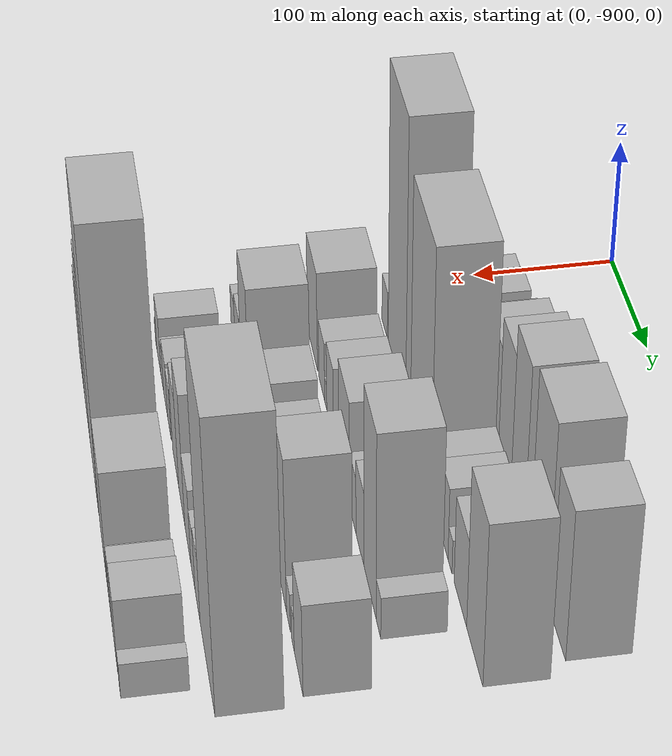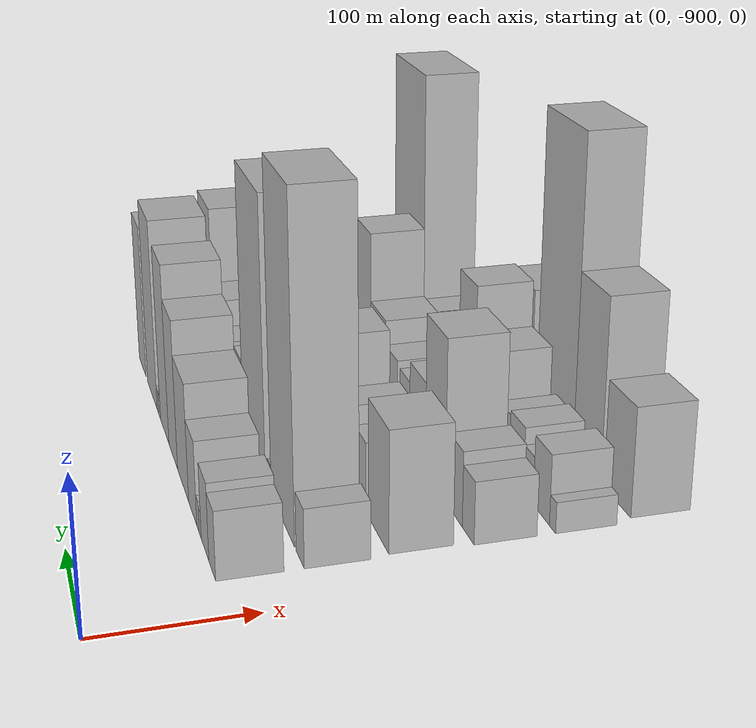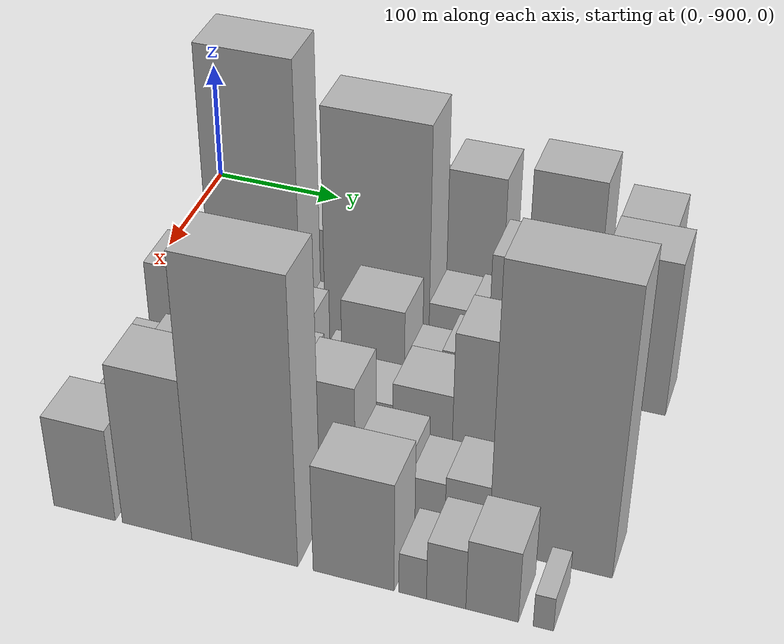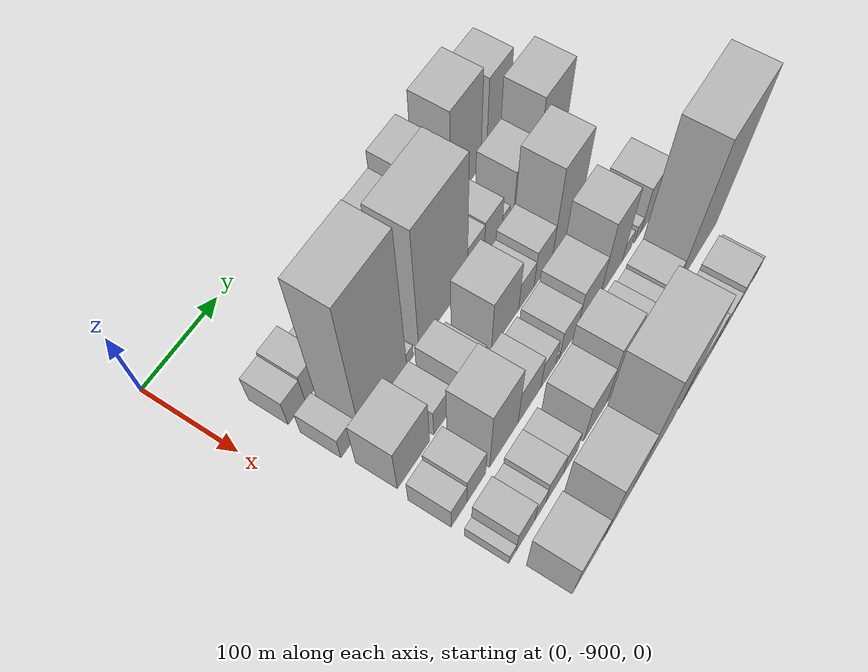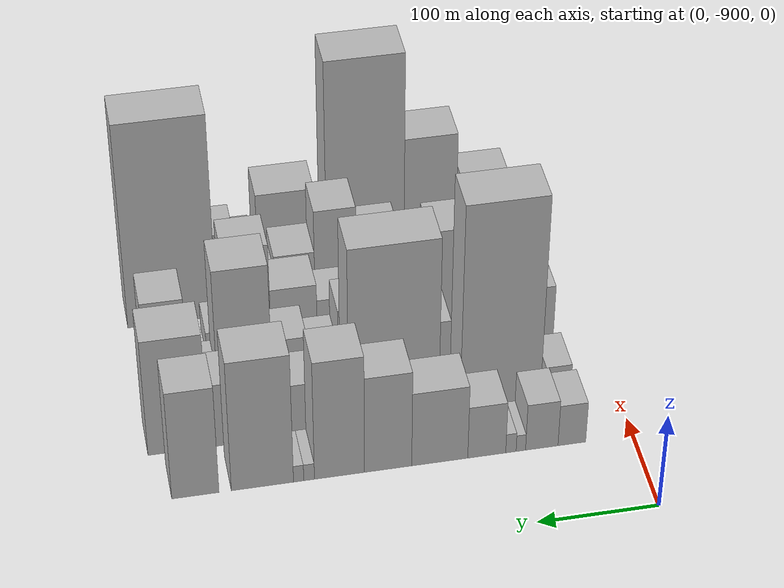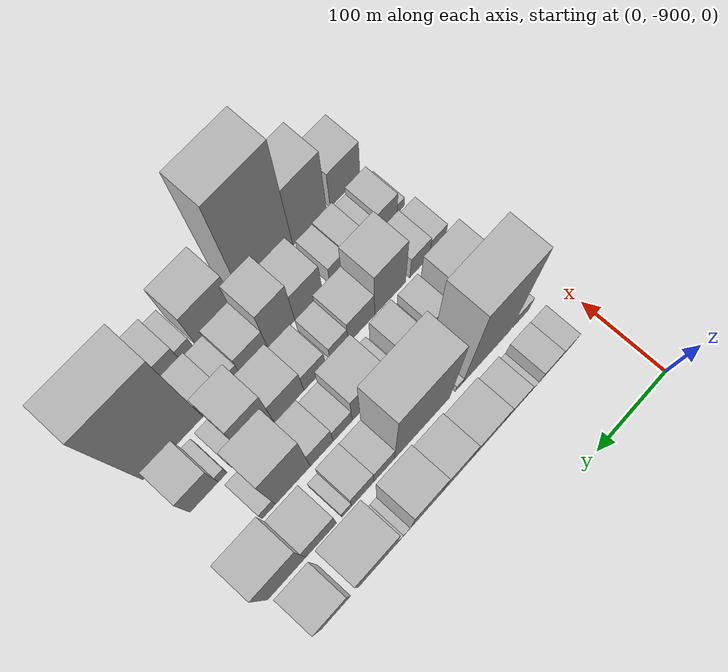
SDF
<sdf version="1.6">
 <world name="default">
  <model name="building_1">
   <static>1</static>
   <pose>100.0000 -848.3081 0 0.000000 0.000000 0.000000</pose>
   <link name="link">
    <pose>0 0 22.50 0 0 0</pose>
    <collision name="collision"><geometry><box><size>40.0000 23.3837 45.0000</size></box></geometry></collision>
    <visual name="visual">
     <cast_shadows>0</cast_shadows>
     <geometry><box><size>40.0000 23.3837 45.0000</size></box></geometry>
     <material>
      <script>
       <uri>model://HANNAS_wall/materials/scripts</uri>
       <uri>model://HANNAS_wall/materials/textures</uri>
       <name>vrc/HANNAS_wall</name>
      </script>
     </material>
    </visual>
   </link>
  </model>
  <model name="building_2">
   <static>1</static>
   <pose>100.0000 -822.9420 0 0.000000 0.000000 0.000000</pose>
   <link name="link">
    <pose>0 0 25.50 0 0 0</pose>
    <collision name="collision"><geometry><box><size>40.0000 27.3487 51.0000</size></box></geometry></collision>
    <visual name="visual">
     <cast_shadows>0</cast_shadows>
     <geometry><box><size>40.0000 27.3487 51.0000</size></box></geometry>
     <material>
      <script>
       <uri>model://HANNAS_wall/materials/scripts</uri>
       <uri>model://HANNAS_wall/materials/textures</uri>
       <name>vrc/HANNAS_wall</name>
      </script>
     </material>
    </visual>
   </link>
  </model>
  <model name="building_3">
   <static>1</static>
   <pose>100.0000 -805.3015 0 0.000000 0.000000 0.000000</pose>
   <link name="link">
    <pose>0 0 9.00 0 0 0</pose>
    <collision name="collision"><geometry><box><size>40.0000 7.9323 18.0000</size></box></geometry></collision>
    <visual name="visual">
     <cast_shadows>0</cast_shadows>
     <geometry><box><size>40.0000 7.9323 18.0000</size></box></geometry>
     <material>
      <script>
       <uri>model://HANNAS_wall/materials/scripts</uri>
       <uri>model://HANNAS_wall/materials/textures</uri>
       <name>vrc/HANNAS_wall</name>
      </script>
     </material>
    </visual>
   </link>
  </model>
  <model name="building_4">
   <static>1</static>
   <pose>100.0000 -796.9766 0 0.000000 0.000000 0.000000</pose>
   <link name="link">
    <pose>0 0 10.50 0 0 0</pose>
    <collision name="collision"><geometry><box><size>40.0000 8.7175 21.0000</size></box></geometry></collision>
    <visual name="visual">
     <cast_shadows>0</cast_shadows>
     <geometry><box><size>40.0000 8.7175 21.0000</size></box></geometry>
     <material>
      <script>
       <uri>model://HANNAS_wall/materials/scripts</uri>
       <uri>model://HANNAS_wall/materials/textures</uri>
       <name>vrc/HANNAS_wall</name>
      </script>
     </material>
    </visual>
   </link>
  </model>
  <model name="building_5">
   <static>1</static>
   <pose>100.0000 -776.7203 0 0.000000 0.000000 0.000000</pose>
   <link name="link">
    <pose>0 0 28.50 0 0 0</pose>
    <collision name="collision"><geometry><box><size>40.0000 31.7950 57.0000</size></box></geometry></collision>
    <visual name="visual">
     <cast_shadows>0</cast_shadows>
     <geometry><box><size>40.0000 31.7950 57.0000</size></box></geometry>
     <material>
      <script>
       <uri>model://HANNAS_wall/materials/scripts</uri>
       <uri>model://HANNAS_wall/materials/textures</uri>
       <name>vrc/HANNAS_wall</name>
      </script>
     </material>
    </visual>
   </link>
  </model>
  <model name="building_6">
   <static>1</static>
   <pose>100.0000 -737.4847 0 0.000000 0.000000 0.000000</pose>
   <link name="link">
    <pose>0 0 40.50 0 0 0</pose>
    <collision name="collision"><geometry><box><size>40.0000 46.6762 81.0000</size></box></geometry></collision>
    <visual name="visual">
     <cast_shadows>0</cast_shadows>
     <geometry><box><size>40.0000 46.6762 81.0000</size></box></geometry>
     <material>
      <script>
       <uri>model://HANNAS_wall/materials/scripts</uri>
       <uri>model://HANNAS_wall/materials/textures</uri>
       <name>vrc/HANNAS_wall</name>
      </script>
     </material>
    </visual>
   </link>
  </model>
  <model name="building_7">
   <static>1</static>
   <pose>100.0000 -694.6013 0 0.000000 0.000000 0.000000</pose>
   <link name="link">
    <pose>0 0 52.50 0 0 0</pose>
    <collision name="collision"><geometry><box><size>40.0000 39.0908 105.0000</size></box></geometry></collision>
    <visual name="visual">
     <cast_shadows>0</cast_shadows>
     <geometry><box><size>40.0000 39.0908 105.0000</size></box></geometry>
     <material>
      <script>
       <uri>model://HANNAS_wall/materials/scripts</uri>
       <uri>model://HANNAS_wall/materials/textures</uri>
       <name>vrc/HANNAS_wall</name>
      </script>
     </material>
    </visual>
   </link>
  </model>
  <model name="building_8">
   <static>1</static>
   <pose>100.0000 -654.4463 0 0.000000 0.000000 0.000000</pose>
   <link name="link">
    <pose>0 0 64.50 0 0 0</pose>
    <collision name="collision"><geometry><box><size>40.0000 41.2190 129.0000</size></box></geometry></collision>
    <visual name="visual">
     <cast_shadows>0</cast_shadows>
     <geometry><box><size>40.0000 41.2190 129.0000</size></box></geometry>
     <material>
      <script>
       <uri>model://HANNAS_wall/materials/scripts</uri>
       <uri>model://HANNAS_wall/materials/textures</uri>
       <name>vrc/HANNAS_wall</name>
      </script>
     </material>
    </visual>
   </link>
  </model>
  <model name="building_9">
   <static>1</static>
   <pose>100.0000 -629.4320 0 0.000000 0.000000 0.000000</pose>
   <link name="link">
    <pose>0 0 9.00 0 0 0</pose>
    <collision name="collision"><geometry><box><size>40.0000 8.8096 18.0000</size></box></geometry></collision>
    <visual name="visual">
     <cast_shadows>0</cast_shadows>
     <geometry><box><size>40.0000 8.8096 18.0000</size></box></geometry>
     <material>
      <script>
       <uri>model://HANNAS_wall/materials/scripts</uri>
       <uri>model://HANNAS_wall/materials/textures</uri>
       <name>vrc/HANNAS_wall</name>
      </script>
     </material>
    </visual>
   </link>
  </model>
  <model name="building_10">
   <static>1</static>
   <pose>100.0000 -620.8518 0 0.000000 0.000000 0.000000</pose>
   <link name="link">
    <pose>0 0 9.00 0 0 0</pose>
    <collision name="collision"><geometry><box><size>40.0000 8.3508 18.0000</size></box></geometry></collision>
    <visual name="visual">
     <cast_shadows>0</cast_shadows>
     <geometry><box><size>40.0000 8.3508 18.0000</size></box></geometry>
     <material>
      <script>
       <uri>model://HANNAS_wall/materials/scripts</uri>
       <uri>model://HANNAS_wall/materials/textures</uri>
       <name>vrc/HANNAS_wall</name>
      </script>
     </material>
    </visual>
   </link>
  </model>
  <model name="building_11">
   <static>1</static>
   <pose>100.0000 -591.3180 0 0.000000 0.000000 0.000000</pose>
   <link name="link">
    <pose>0 0 70.50 0 0 0</pose>
    <collision name="collision"><geometry><box><size>40.0000 50.7169 141.0000</size></box></geometry></collision>
    <visual name="visual">
     <cast_shadows>0</cast_shadows>
     <geometry><box><size>40.0000 50.7169 141.0000</size></box></geometry>
     <material>
      <script>
       <uri>model://HANNAS_wall/materials/scripts</uri>
       <uri>model://HANNAS_wall/materials/textures</uri>
       <name>vrc/HANNAS_wall</name>
      </script>
     </material>
    </visual>
   </link>
  </model>
  <model name="building_12">
   <static>1</static>
   <pose>100.0000 -536.8043 0 0.000000 0.000000 0.000000</pose>
   <link name="link">
    <pose>0 0 58.50 0 0 0</pose>
    <collision name="collision"><geometry><box><size>40.0000 38.3103 117.0000</size></box></geometry></collision>
    <visual name="visual">
     <cast_shadows>0</cast_shadows>
     <geometry><box><size>40.0000 38.3103 117.0000</size></box></geometry>
     <material>
      <script>
       <uri>model://HANNAS_wall/materials/scripts</uri>
       <uri>model://HANNAS_wall/materials/textures</uri>
       <name>vrc/HANNAS_wall</name>
      </script>
     </material>
    </visual>
   </link>
  </model>
  <model name="building_52">
   <static>1</static>
   <pose>152.0000 -848.9873 0 0.000000 0.000000 0.000000</pose>
   <link name="link">
    <pose>0 0 19.50 0 0 0</pose>
    <collision name="collision"><geometry><box><size>40.0000 22.0254 39.0000</size></box></geometry></collision>
    <visual name="visual">
     <cast_shadows>0</cast_shadows>
     <geometry><box><size>40.0000 22.0254 39.0000</size></box></geometry>
     <material>
      <script>
       <uri>model://HANNAS_wall/materials/scripts</uri>
       <uri>model://HANNAS_wall/materials/textures</uri>
       <name>vrc/HANNAS_wall</name>
      </script>
     </material>
    </visual>
   </link>
  </model>
  <model name="building_53">
   <static>1</static>
   <pose>152.0000 -799.7490 0 0.000000 0.000000 0.000000</pose>
   <link name="link">
    <pose>0 0 112.50 0 0 0</pose>
    <collision name="collision"><geometry><box><size>40.0000 68.4512 225.0000</size></box></geometry></collision>
    <visual name="visual">
     <cast_shadows>0</cast_shadows>
     <geometry><box><size>40.0000 68.4512 225.0000</size></box></geometry>
     <material>
      <script>
       <uri>model://HANNAS_wall/materials/scripts</uri>
       <uri>model://HANNAS_wall/materials/textures</uri>
       <name>vrc/HANNAS_wall</name>
      </script>
     </material>
    </visual>
   </link>
  </model>
  <model name="building_54">
   <static>1</static>
   <pose>152.0000 -760.4466 0 0.000000 0.000000 0.000000</pose>
   <link name="link">
    <pose>0 0 10.50 0 0 0</pose>
    <collision name="collision"><geometry><box><size>40.0000 10.1536 21.0000</size></box></geometry></collision>
    <visual name="visual">
     <cast_shadows>0</cast_shadows>
     <geometry><box><size>40.0000 10.1536 21.0000</size></box></geometry>
     <material>
      <script>
       <uri>model://HANNAS_wall/materials/scripts</uri>
       <uri>model://HANNAS_wall/materials/textures</uri>
       <name>vrc/HANNAS_wall</name>
      </script>
     </material>
    </visual>
   </link>
  </model>
  <model name="building_55">
   <static>1</static>
   <pose>152.0000 -709.3927 0 0.000000 0.000000 0.000000</pose>
   <link name="link">
    <pose>0 0 97.50 0 0 0</pose>
    <collision name="collision"><geometry><box><size>40.0000 75.9543 195.0000</size></box></geometry></collision>
    <visual name="visual">
     <cast_shadows>0</cast_shadows>
     <geometry><box><size>40.0000 75.9543 195.0000</size></box></geometry>
     <material>
      <script>
       <uri>model://HANNAS_wall/materials/scripts</uri>
       <uri>model://HANNAS_wall/materials/textures</uri>
       <name>vrc/HANNAS_wall</name>
      </script>
     </material>
    </visual>
   </link>
  </model>
  <model name="building_56">
   <static>1</static>
   <pose>152.0000 -657.5822 0 0.000000 0.000000 0.000000</pose>
   <link name="link">
    <pose>0 0 27.00 0 0 0</pose>
    <collision name="collision"><geometry><box><size>40.0000 27.6666 54.0000</size></box></geometry></collision>
    <visual name="visual">
     <cast_shadows>0</cast_shadows>
     <geometry><box><size>40.0000 27.6666 54.0000</size></box></geometry>
     <material>
      <script>
       <uri>model://HANNAS_wall/materials/scripts</uri>
       <uri>model://HANNAS_wall/materials/textures</uri>
       <name>vrc/HANNAS_wall</name>
      </script>
     </material>
    </visual>
   </link>
  </model>
  <model name="building_57">
   <static>1</static>
   <pose>152.0000 -629.0129 0 0.000000 0.000000 0.000000</pose>
   <link name="link">
    <pose>0 0 28.50 0 0 0</pose>
    <collision name="collision"><geometry><box><size>40.0000 29.4720 57.0000</size></box></geometry></collision>
    <visual name="visual">
     <cast_shadows>0</cast_shadows>
     <geometry><box><size>40.0000 29.4720 57.0000</size></box></geometry>
     <material>
      <script>
       <uri>model://HANNAS_wall/materials/scripts</uri>
       <uri>model://HANNAS_wall/materials/textures</uri>
       <name>vrc/HANNAS_wall</name>
      </script>
     </material>
    </visual>
   </link>
  </model>
  <model name="building_58">
   <static>1</static>
   <pose>152.0000 -607.7544 0 0.000000 0.000000 0.000000</pose>
   <link name="link">
    <pose>0 0 13.50 0 0 0</pose>
    <collision name="collision"><geometry><box><size>40.0000 13.0451 27.0000</size></box></geometry></collision>
    <visual name="visual">
     <cast_shadows>0</cast_shadows>
     <geometry><box><size>40.0000 13.0451 27.0000</size></box></geometry>
     <material>
      <script>
       <uri>model://HANNAS_wall/materials/scripts</uri>
       <uri>model://HANNAS_wall/materials/textures</uri>
       <name>vrc/HANNAS_wall</name>
      </script>
     </material>
    </visual>
   </link>
  </model>
  <model name="building_59">
   <static>1</static>
   <pose>152.0000 -574.2278 0 0.000000 0.000000 0.000000</pose>
   <link name="link">
    <pose>0 0 34.50 0 0 0</pose>
    <collision name="collision"><geometry><box><size>40.0000 40.0081 69.0000</size></box></geometry></collision>
    <visual name="visual">
     <cast_shadows>0</cast_shadows>
     <geometry><box><size>40.0000 40.0081 69.0000</size></box></geometry>
     <material>
      <script>
       <uri>model://HANNAS_wall/materials/scripts</uri>
       <uri>model://HANNAS_wall/materials/textures</uri>
       <name>vrc/HANNAS_wall</name>
      </script>
     </material>
    </visual>
   </link>
  </model>
  <model name="building_60">
   <static>1</static>
   <pose>152.0000 -529.4644 0 0.000000 0.000000 0.000000</pose>
   <link name="link">
    <pose>0 0 63.00 0 0 0</pose>
    <collision name="collision"><geometry><box><size>40.0000 49.5187 126.0000</size></box></geometry></collision>
    <visual name="visual">
     <cast_shadows>0</cast_shadows>
     <geometry><box><size>40.0000 49.5187 126.0000</size></box></geometry>
     <material>
      <script>
       <uri>model://HANNAS_wall/materials/scripts</uri>
       <uri>model://HANNAS_wall/materials/textures</uri>
       <name>vrc/HANNAS_wall</name>
      </script>
     </material>
    </visual>
   </link>
  </model>
  <model name="building_96">
   <static>1</static>
   <pose>204.0000 -833.6947 0 0.000000 0.000000 0.000000</pose>
   <link name="link">
    <pose>0 0 40.50 0 0 0</pose>
    <collision name="collision"><geometry><box><size>40.0000 46.6106 81.0000</size></box></geometry></collision>
    <visual name="visual">
     <cast_shadows>0</cast_shadows>
     <geometry><box><size>40.0000 46.6106 81.0000</size></box></geometry>
     <material>
      <script>
       <uri>model://HANNAS_wall/materials/scripts</uri>
       <uri>model://HANNAS_wall/materials/textures</uri>
       <name>vrc/HANNAS_wall</name>
      </script>
     </material>
    </visual>
   </link>
  </model>
  <model name="building_97">
   <static>1</static>
   <pose>204.0000 -791.0180 0 0.000000 0.000000 0.000000</pose>
   <link name="link">
    <pose>0 0 24.00 0 0 0</pose>
    <collision name="collision"><geometry><box><size>40.0000 26.7429 48.0000</size></box></geometry></collision>
    <visual name="visual">
     <cast_shadows>0</cast_shadows>
     <geometry><box><size>40.0000 26.7429 48.0000</size></box></geometry>
     <material>
      <script>
       <uri>model://HANNAS_wall/materials/scripts</uri>
       <uri>model://HANNAS_wall/materials/textures</uri>
       <name>vrc/HANNAS_wall</name>
      </script>
     </material>
    </visual>
   </link>
  </model>
  <model name="building_98">
   <static>1</static>
   <pose>204.0000 -773.0447 0 0.000000 0.000000 0.000000</pose>
   <link name="link">
    <pose>0 0 10.50 0 0 0</pose>
    <collision name="collision"><geometry><box><size>40.0000 9.2038 21.0000</size></box></geometry></collision>
    <visual name="visual">
     <cast_shadows>0</cast_shadows>
     <geometry><box><size>40.0000 9.2038 21.0000</size></box></geometry>
     <material>
      <script>
       <uri>model://HANNAS_wall/materials/scripts</uri>
       <uri>model://HANNAS_wall/materials/textures</uri>
       <name>vrc/HANNAS_wall</name>
      </script>
     </material>
    </visual>
   </link>
  </model>
  <model name="building_99">
   <static>1</static>
   <pose>204.0000 -754.0227 0 0.000000 0.000000 0.000000</pose>
   <link name="link">
    <pose>0 0 28.50 0 0 0</pose>
    <collision name="collision"><geometry><box><size>40.0000 28.8403 57.0000</size></box></geometry></collision>
    <visual name="visual">
     <cast_shadows>0</cast_shadows>
     <geometry><box><size>40.0000 28.8403 57.0000</size></box></geometry>
     <material>
      <script>
       <uri>model://HANNAS_wall/materials/scripts</uri>
       <uri>model://HANNAS_wall/materials/textures</uri>
       <name>vrc/HANNAS_wall</name>
      </script>
     </material>
    </visual>
   </link>
  </model>
  <model name="building_100">
   <static>1</static>
   <pose>204.0000 -729.3753 0 0.000000 0.000000 0.000000</pose>
   <link name="link">
    <pose>0 0 12.00 0 0 0</pose>
    <collision name="collision"><geometry><box><size>40.0000 10.4544 24.0000</size></box></geometry></collision>
    <visual name="visual">
     <cast_shadows>0</cast_shadows>
     <geometry><box><size>40.0000 10.4544 24.0000</size></box></geometry>
     <material>
      <script>
       <uri>model://HANNAS_wall/materials/scripts</uri>
       <uri>model://HANNAS_wall/materials/textures</uri>
       <name>vrc/HANNAS_wall</name>
      </script>
     </material>
    </visual>
   </link>
  </model>
  <model name="building_101">
   <static>1</static>
   <pose>204.0000 -694.1203 0 0.000000 0.000000 0.000000</pose>
   <link name="link">
    <pose>0 0 42.00 0 0 0</pose>
    <collision name="collision"><geometry><box><size>40.0000 44.0556 84.0000</size></box></geometry></collision>
    <visual name="visual">
     <cast_shadows>0</cast_shadows>
     <geometry><box><size>40.0000 44.0556 84.0000</size></box></geometry>
     <material>
      <script>
       <uri>model://HANNAS_wall/materials/scripts</uri>
       <uri>model://HANNAS_wall/materials/textures</uri>
       <name>vrc/HANNAS_wall</name>
      </script>
     </material>
    </visual>
   </link>
  </model>
  <model name="building_102">
   <static>1</static>
   <pose>204.0000 -659.2146 0 0.000000 0.000000 0.000000</pose>
   <link name="link">
    <pose>0 0 22.50 0 0 0</pose>
    <collision name="collision"><geometry><box><size>40.0000 25.7557 45.0000</size></box></geometry></collision>
    <visual name="visual">
     <cast_shadows>0</cast_shadows>
     <geometry><box><size>40.0000 25.7557 45.0000</size></box></geometry>
     <material>
      <script>
       <uri>model://HANNAS_wall/materials/scripts</uri>
       <uri>model://HANNAS_wall/materials/textures</uri>
       <name>vrc/HANNAS_wall</name>
      </script>
     </material>
    </visual>
   </link>
  </model>
  <model name="building_103">
   <static>1</static>
   <pose>204.0000 -631.1133 0 0.000000 0.000000 0.000000</pose>
   <link name="link">
    <pose>0 0 30.00 0 0 0</pose>
    <collision name="collision"><geometry><box><size>40.0000 30.4469 60.0000</size></box></geometry></collision>
    <visual name="visual">
     <cast_shadows>0</cast_shadows>
     <geometry><box><size>40.0000 30.4469 60.0000</size></box></geometry>
     <material>
      <script>
       <uri>model://HANNAS_wall/materials/scripts</uri>
       <uri>model://HANNAS_wall/materials/textures</uri>
       <name>vrc/HANNAS_wall</name>
      </script>
     </material>
    </visual>
   </link>
  </model>
  <model name="building_104">
   <static>1</static>
   <pose>204.0000 -592.8675 0 0.000000 0.000000 0.000000</pose>
   <link name="link">
    <pose>0 0 72.00 0 0 0</pose>
    <collision name="collision"><geometry><box><size>40.0000 46.0448 144.0000</size></box></geometry></collision>
    <visual name="visual">
     <cast_shadows>0</cast_shadows>
     <geometry><box><size>40.0000 46.0448 144.0000</size></box></geometry>
     <material>
      <script>
       <uri>model://HANNAS_wall/materials/scripts</uri>
       <uri>model://HANNAS_wall/materials/textures</uri>
       <name>vrc/HANNAS_wall</name>
      </script>
     </material>
    </visual>
   </link>
  </model>
  <model name="building_105">
   <static>1</static>
   <pose>204.0000 -561.3258 0 0.000000 0.000000 0.000000</pose>
   <link name="link">
    <pose>0 0 16.50 0 0 0</pose>
    <collision name="collision"><geometry><box><size>40.0000 17.0385 33.0000</size></box></geometry></collision>
    <visual name="visual">
     <cast_shadows>0</cast_shadows>
     <geometry><box><size>40.0000 17.0385 33.0000</size></box></geometry>
     <material>
      <script>
       <uri>model://HANNAS_wall/materials/scripts</uri>
       <uri>model://HANNAS_wall/materials/textures</uri>
       <name>vrc/HANNAS_wall</name>
      </script>
     </material>
    </visual>
   </link>
  </model>
  <model name="building_150">
   <static>1</static>
   <pose>256.0000 -848.6496 0 0.000000 0.000000 0.000000</pose>
   <link name="link">
    <pose>0 0 21.00 0 0 0</pose>
    <collision name="collision"><geometry><box><size>40.0000 22.7009 42.0000</size></box></geometry></collision>
    <visual name="visual">
     <cast_shadows>0</cast_shadows>
     <geometry><box><size>40.0000 22.7009 42.0000</size></box></geometry>
     <material>
      <script>
       <uri>model://HANNAS_wall/materials/scripts</uri>
       <uri>model://HANNAS_wall/materials/textures</uri>
       <name>vrc/HANNAS_wall</name>
      </script>
     </material>
    </visual>
   </link>
  </model>
  <model name="building_151">
   <static>1</static>
   <pose>256.0000 -823.3860 0 0.000000 0.000000 0.000000</pose>
   <link name="link">
    <pose>0 0 25.50 0 0 0</pose>
    <collision name="collision"><geometry><box><size>40.0000 27.8263 51.0000</size></box></geometry></collision>
    <visual name="visual">
     <cast_shadows>0</cast_shadows>
     <geometry><box><size>40.0000 27.8263 51.0000</size></box></geometry>
     <material>
      <script>
       <uri>model://HANNAS_wall/materials/scripts</uri>
       <uri>model://HANNAS_wall/materials/textures</uri>
       <name>vrc/HANNAS_wall</name>
      </script>
     </material>
    </visual>
   </link>
  </model>
  <model name="building_152">
   <static>1</static>
   <pose>256.0000 -781.6897 0 0.000000 0.000000 0.000000</pose>
   <link name="link">
    <pose>0 0 55.50 0 0 0</pose>
    <collision name="collision"><geometry><box><size>40.0000 43.5663 111.0000</size></box></geometry></collision>
    <visual name="visual">
     <cast_shadows>0</cast_shadows>
     <geometry><box><size>40.0000 43.5663 111.0000</size></box></geometry>
     <material>
      <script>
       <uri>model://HANNAS_wall/materials/scripts</uri>
       <uri>model://HANNAS_wall/materials/textures</uri>
       <name>vrc/HANNAS_wall</name>
      </script>
     </material>
    </visual>
   </link>
  </model>
  <model name="building_153">
   <static>1</static>
   <pose>256.0000 -741.7256 0 0.000000 0.000000 0.000000</pose>
   <link name="link">
    <pose>0 0 31.50 0 0 0</pose>
    <collision name="collision"><geometry><box><size>40.0000 36.3619 63.0000</size></box></geometry></collision>
    <visual name="visual">
     <cast_shadows>0</cast_shadows>
     <geometry><box><size>40.0000 36.3619 63.0000</size></box></geometry>
     <material>
      <script>
       <uri>model://HANNAS_wall/materials/scripts</uri>
       <uri>model://HANNAS_wall/materials/textures</uri>
       <name>vrc/HANNAS_wall</name>
      </script>
     </material>
    </visual>
   </link>
  </model>
  <model name="building_154">
   <static>1</static>
   <pose>256.0000 -711.3426 0 0.000000 0.000000 0.000000</pose>
   <link name="link">
    <pose>0 0 24.00 0 0 0</pose>
    <collision name="collision"><geometry><box><size>40.0000 24.4041 48.0000</size></box></geometry></collision>
    <visual name="visual">
     <cast_shadows>0</cast_shadows>
     <geometry><box><size>40.0000 24.4041 48.0000</size></box></geometry>
     <material>
      <script>
       <uri>model://HANNAS_wall/materials/scripts</uri>
       <uri>model://HANNAS_wall/materials/textures</uri>
       <name>vrc/HANNAS_wall</name>
      </script>
     </material>
    </visual>
   </link>
  </model>
  <model name="building_155">
   <static>1</static>
   <pose>256.0000 -696.1268 0 0.000000 0.000000 0.000000</pose>
   <link name="link">
    <pose>0 0 7.50 0 0 0</pose>
    <collision name="collision"><geometry><box><size>40.0000 6.0275 15.0000</size></box></geometry></collision>
    <visual name="visual">
     <cast_shadows>0</cast_shadows>
     <geometry><box><size>40.0000 6.0275 15.0000</size></box></geometry>
     <material>
      <script>
       <uri>model://HANNAS_wall/materials/scripts</uri>
       <uri>model://HANNAS_wall/materials/textures</uri>
       <name>vrc/HANNAS_wall</name>
      </script>
     </material>
    </visual>
   </link>
  </model>
  <model name="building_156">
   <static>1</static>
   <pose>256.0000 -678.1137 0 0.000000 0.000000 0.000000</pose>
   <link name="link">
    <pose>0 0 25.50 0 0 0</pose>
    <collision name="collision"><geometry><box><size>40.0000 29.9986 51.0000</size></box></geometry></collision>
    <visual name="visual">
     <cast_shadows>0</cast_shadows>
     <geometry><box><size>40.0000 29.9986 51.0000</size></box></geometry>
     <material>
      <script>
       <uri>model://HANNAS_wall/materials/scripts</uri>
       <uri>model://HANNAS_wall/materials/textures</uri>
       <name>vrc/HANNAS_wall</name>
      </script>
     </material>
    </visual>
   </link>
  </model>
  <model name="building_157">
   <static>1</static>
   <pose>256.0000 -643.1906 0 0.000000 0.000000 0.000000</pose>
   <link name="link">
    <pose>0 0 34.50 0 0 0</pose>
    <collision name="collision"><geometry><box><size>40.0000 39.8476 69.0000</size></box></geometry></collision>
    <visual name="visual">
     <cast_shadows>0</cast_shadows>
     <geometry><box><size>40.0000 39.8476 69.0000</size></box></geometry>
     <material>
      <script>
       <uri>model://HANNAS_wall/materials/scripts</uri>
       <uri>model://HANNAS_wall/materials/textures</uri>
       <name>vrc/HANNAS_wall</name>
      </script>
     </material>
    </visual>
   </link>
  </model>
  <model name="building_158">
   <static>1</static>
   <pose>256.0000 -603.6557 0 0.000000 0.000000 0.000000</pose>
   <link name="link">
    <pose>0 0 60.00 0 0 0</pose>
    <collision name="collision"><geometry><box><size>40.0000 39.2221 120.0000</size></box></geometry></collision>
    <visual name="visual">
     <cast_shadows>0</cast_shadows>
     <geometry><box><size>40.0000 39.2221 120.0000</size></box></geometry>
     <material>
      <script>
       <uri>model://HANNAS_wall/materials/scripts</uri>
       <uri>model://HANNAS_wall/materials/textures</uri>
       <name>vrc/HANNAS_wall</name>
      </script>
     </material>
    </visual>
   </link>
  </model>
  <model name="building_159">
   <static>1</static>
   <pose>256.0000 -575.7521 0 0.000000 0.000000 0.000000</pose>
   <link name="link">
    <pose>0 0 15.00 0 0 0</pose>
    <collision name="collision"><geometry><box><size>40.0000 16.5852 30.0000</size></box></geometry></collision>
    <visual name="visual">
     <cast_shadows>0</cast_shadows>
     <geometry><box><size>40.0000 16.5852 30.0000</size></box></geometry>
     <material>
      <script>
       <uri>model://HANNAS_wall/materials/scripts</uri>
       <uri>model://HANNAS_wall/materials/textures</uri>
       <name>vrc/HANNAS_wall</name>
      </script>
     </material>
    </visual>
   </link>
  </model>
  <model name="building_160">
   <static>1</static>
   <pose>256.0000 -555.7929 0 0.000000 0.000000 0.000000</pose>
   <link name="link">
    <pose>0 0 13.50 0 0 0</pose>
    <collision name="collision"><geometry><box><size>40.0000 11.3332 27.0000</size></box></geometry></collision>
    <visual name="visual">
     <cast_shadows>0</cast_shadows>
     <geometry><box><size>40.0000 11.3332 27.0000</size></box></geometry>
     <material>
      <script>
       <uri>model://HANNAS_wall/materials/scripts</uri>
       <uri>model://HANNAS_wall/materials/textures</uri>
       <name>vrc/HANNAS_wall</name>
      </script>
     </material>
    </visual>
   </link>
  </model>
  <model name="building_161">
   <static>1</static>
   <pose>256.0000 -531.8421 0 0.000000 0.000000 0.000000</pose>
   <link name="link">
    <pose>0 0 36.00 0 0 0</pose>
    <collision name="collision"><geometry><box><size>40.0000 36.5685 72.0000</size></box></geometry></collision>
    <visual name="visual">
     <cast_shadows>0</cast_shadows>
     <geometry><box><size>40.0000 36.5685 72.0000</size></box></geometry>
     <material>
      <script>
       <uri>model://HANNAS_wall/materials/scripts</uri>
       <uri>model://HANNAS_wall/materials/textures</uri>
       <name>vrc/HANNAS_wall</name>
      </script>
     </material>
    </visual>
   </link>
  </model>
  <model name="building_203">
   <static>1</static>
   <pose>308.0000 -854.8652 0 0.000000 0.000000 0.000000</pose>
   <link name="link">
    <pose>0 0 10.50 0 0 0</pose>
    <collision name="collision"><geometry><box><size>40.0000 10.2695 21.0000</size></box></geometry></collision>
    <visual name="visual">
     <cast_shadows>0</cast_shadows>
     <geometry><box><size>40.0000 10.2695 21.0000</size></box></geometry>
     <material>
      <script>
       <uri>model://HANNAS_wall/materials/scripts</uri>
       <uri>model://HANNAS_wall/materials/textures</uri>
       <name>vrc/HANNAS_wall</name>
      </script>
     </material>
    </visual>
   </link>
  </model>
  <model name="building_204">
   <static>1</static>
   <pose>308.0000 -835.6859 0 0.000000 0.000000 0.000000</pose>
   <link name="link">
    <pose>0 0 24.00 0 0 0</pose>
    <collision name="collision"><geometry><box><size>40.0000 28.0892 48.0000</size></box></geometry></collision>
    <visual name="visual">
     <cast_shadows>0</cast_shadows>
     <geometry><box><size>40.0000 28.0892 48.0000</size></box></geometry>
     <material>
      <script>
       <uri>model://HANNAS_wall/materials/scripts</uri>
       <uri>model://HANNAS_wall/materials/textures</uri>
       <name>vrc/HANNAS_wall</name>
      </script>
     </material>
    </visual>
   </link>
  </model>
  <model name="building_205">
   <static>1</static>
   <pose>308.0000 -812.7681 0 0.000000 0.000000 0.000000</pose>
   <link name="link">
    <pose>0 0 16.50 0 0 0</pose>
    <collision name="collision"><geometry><box><size>40.0000 17.7463 33.0000</size></box></geometry></collision>
    <visual name="visual">
     <cast_shadows>0</cast_shadows>
     <geometry><box><size>40.0000 17.7463 33.0000</size></box></geometry>
     <material>
      <script>
       <uri>model://HANNAS_wall/materials/scripts</uri>
       <uri>model://HANNAS_wall/materials/textures</uri>
       <name>vrc/HANNAS_wall</name>
      </script>
     </material>
    </visual>
   </link>
  </model>
  <model name="building_206">
   <static>1</static>
   <pose>308.0000 -790.4411 0 0.000000 0.000000 0.000000</pose>
   <link name="link">
    <pose>0 0 22.50 0 0 0</pose>
    <collision name="collision"><geometry><box><size>40.0000 26.9078 45.0000</size></box></geometry></collision>
    <visual name="visual">
     <cast_shadows>0</cast_shadows>
     <geometry><box><size>40.0000 26.9078 45.0000</size></box></geometry>
     <material>
      <script>
       <uri>model://HANNAS_wall/materials/scripts</uri>
       <uri>model://HANNAS_wall/materials/textures</uri>
       <name>vrc/HANNAS_wall</name>
      </script>
     </material>
    </visual>
   </link>
  </model>
  <model name="building_207">
   <static>1</static>
   <pose>308.0000 -765.7582 0 0.000000 0.000000 0.000000</pose>
   <link name="link">
    <pose>0 0 21.00 0 0 0</pose>
    <collision name="collision"><geometry><box><size>40.0000 22.4580 42.0000</size></box></geometry></collision>
    <visual name="visual">
     <cast_shadows>0</cast_shadows>
     <geometry><box><size>40.0000 22.4580 42.0000</size></box></geometry>
     <material>
      <script>
       <uri>model://HANNAS_wall/materials/scripts</uri>
       <uri>model://HANNAS_wall/materials/textures</uri>
       <name>vrc/HANNAS_wall</name>
      </script>
     </material>
    </visual>
   </link>
  </model>
  <model name="building_208">
   <static>1</static>
   <pose>308.0000 -725.4713 0 0.000000 0.000000 0.000000</pose>
   <link name="link">
    <pose>0 0 36.00 0 0 0</pose>
    <collision name="collision"><geometry><box><size>40.0000 38.1158 72.0000</size></box></geometry></collision>
    <visual name="visual">
     <cast_shadows>0</cast_shadows>
     <geometry><box><size>40.0000 38.1158 72.0000</size></box></geometry>
     <material>
      <script>
       <uri>model://HANNAS_wall/materials/scripts</uri>
       <uri>model://HANNAS_wall/materials/textures</uri>
       <name>vrc/HANNAS_wall</name>
      </script>
     </material>
    </visual>
   </link>
  </model>
  <model name="building_209">
   <static>1</static>
   <pose>308.0000 -688.1913 0 0.000000 0.000000 0.000000</pose>
   <link name="link">
    <pose>0 0 52.50 0 0 0</pose>
    <collision name="collision"><geometry><box><size>40.0000 36.4443 105.0000</size></box></geometry></collision>
    <visual name="visual">
     <cast_shadows>0</cast_shadows>
     <geometry><box><size>40.0000 36.4443 105.0000</size></box></geometry>
     <material>
      <script>
       <uri>model://HANNAS_wall/materials/scripts</uri>
       <uri>model://HANNAS_wall/materials/textures</uri>
       <name>vrc/HANNAS_wall</name>
      </script>
     </material>
    </visual>
   </link>
  </model>
  <model name="building_210">
   <static>1</static>
   <pose>308.0000 -652.2622 0 0.000000 0.000000 0.000000</pose>
   <link name="link">
    <pose>0 0 30.00 0 0 0</pose>
    <collision name="collision"><geometry><box><size>40.0000 35.4138 60.0000</size></box></geometry></collision>
    <visual name="visual">
     <cast_shadows>0</cast_shadows>
     <geometry><box><size>40.0000 35.4138 60.0000</size></box></geometry>
     <material>
      <script>
       <uri>model://HANNAS_wall/materials/scripts</uri>
       <uri>model://HANNAS_wall/materials/textures</uri>
       <name>vrc/HANNAS_wall</name>
      </script>
     </material>
    </visual>
   </link>
  </model>
  <model name="building_211">
   <static>1</static>
   <pose>308.0000 -623.1515 0 0.000000 0.000000 0.000000</pose>
   <link name="link">
    <pose>0 0 22.50 0 0 0</pose>
    <collision name="collision"><geometry><box><size>40.0000 22.8077 45.0000</size></box></geometry></collision>
    <visual name="visual">
     <cast_shadows>0</cast_shadows>
     <geometry><box><size>40.0000 22.8077 45.0000</size></box></geometry>
     <material>
      <script>
       <uri>model://HANNAS_wall/materials/scripts</uri>
       <uri>model://HANNAS_wall/materials/textures</uri>
       <name>vrc/HANNAS_wall</name>
      </script>
     </material>
    </visual>
   </link>
  </model>
  <model name="building_212">
   <static>1</static>
   <pose>308.0000 -597.5288 0 0.000000 0.000000 0.000000</pose>
   <link name="link">
    <pose>0 0 25.50 0 0 0</pose>
    <collision name="collision"><geometry><box><size>40.0000 28.4377 51.0000</size></box></geometry></collision>
    <visual name="visual">
     <cast_shadows>0</cast_shadows>
     <geometry><box><size>40.0000 28.4377 51.0000</size></box></geometry>
     <material>
      <script>
       <uri>model://HANNAS_wall/materials/scripts</uri>
       <uri>model://HANNAS_wall/materials/textures</uri>
       <name>vrc/HANNAS_wall</name>
      </script>
     </material>
    </visual>
   </link>
  </model>
  <model name="building_213">
   <static>1</static>
   <pose>308.0000 -544.5431 0 0.000000 0.000000 0.000000</pose>
   <link name="link">
    <pose>0 0 111.00 0 0 0</pose>
    <collision name="collision"><geometry><box><size>40.0000 77.5337 222.0000</size></box></geometry></collision>
    <visual name="visual">
     <cast_shadows>0</cast_shadows>
     <geometry><box><size>40.0000 77.5337 222.0000</size></box></geometry>
     <material>
      <script>
       <uri>model://HANNAS_wall/materials/scripts</uri>
       <uri>model://HANNAS_wall/materials/textures</uri>
       <name>vrc/HANNAS_wall</name>
      </script>
     </material>
    </visual>
   </link>
  </model>
  <model name="building_261">
   <static>1</static>
   <pose>360.0000 -832.7083 0 0.000000 0.000000 0.000000</pose>
   <link name="link">
    <pose>0 0 37.50 0 0 0</pose>
    <collision name="collision"><geometry><box><size>40.0000 42.5835 75.0000</size></box></geometry></collision>
    <visual name="visual">
     <cast_shadows>0</cast_shadows>
     <geometry><box><size>40.0000 42.5835 75.0000</size></box></geometry>
     <material>
      <script>
       <uri>model://HANNAS_wall/materials/scripts</uri>
       <uri>model://HANNAS_wall/materials/textures</uri>
       <name>vrc/HANNAS_wall</name>
      </script>
     </material>
    </visual>
   </link>
  </model>
  <model name="building_262">
   <static>1</static>
   <pose>360.0000 -782.8261 0 0.000000 0.000000 0.000000</pose>
   <link name="link">
    <pose>0 0 64.50 0 0 0</pose>
    <collision name="collision"><geometry><box><size>40.0000 47.1808 129.0000</size></box></geometry></collision>
    <visual name="visual">
     <cast_shadows>0</cast_shadows>
     <geometry><box><size>40.0000 47.1808 129.0000</size></box></geometry>
     <material>
      <script>
       <uri>model://HANNAS_wall/materials/scripts</uri>
       <uri>model://HANNAS_wall/materials/textures</uri>
       <name>vrc/HANNAS_wall</name>
      </script>
     </material>
    </visual>
   </link>
  </model>
  <model name="building_263">
   <static>1</static>
   <pose>360.0000 -724.1882 0 0.000000 0.000000 0.000000</pose>
   <link name="link">
    <pose>0 0 111.00 0 0 0</pose>
    <collision name="collision"><geometry><box><size>40.0000 70.0949 222.0000</size></box></geometry></collision>
    <visual name="visual">
     <cast_shadows>0</cast_shadows>
     <geometry><box><size>40.0000 70.0949 222.0000</size></box></geometry>
     <material>
      <script>
       <uri>model://HANNAS_wall/materials/scripts</uri>
       <uri>model://HANNAS_wall/materials/textures</uri>
       <name>vrc/HANNAS_wall</name>
      </script>
     </material>
    </visual>
   </link>
  </model>
  <model name="building_264">
   <static>1</static>
   <pose>360.0000 -653.2919 0 0.000000 0.000000 0.000000</pose>
   <link name="link">
    <pose>0 0 43.50 0 0 0</pose>
    <collision name="collision"><geometry><box><size>40.0000 51.6979 87.0000</size></box></geometry></collision>
    <visual name="visual">
     <cast_shadows>0</cast_shadows>
     <geometry><box><size>40.0000 51.6979 87.0000</size></box></geometry>
     <material>
      <script>
       <uri>model://HANNAS_wall/materials/scripts</uri>
       <uri>model://HANNAS_wall/materials/textures</uri>
       <name>vrc/HANNAS_wall</name>
      </script>
     </material>
    </visual>
   </link>
  </model>
  <model name="building_265">
   <static>1</static>
   <pose>360.0000 -615.7779 0 0.000000 0.000000 0.000000</pose>
   <link name="link">
    <pose>0 0 16.50 0 0 0</pose>
    <collision name="collision"><geometry><box><size>40.0000 17.3301 33.0000</size></box></geometry></collision>
    <visual name="visual">
     <cast_shadows>0</cast_shadows>
     <geometry><box><size>40.0000 17.3301 33.0000</size></box></geometry>
     <material>
      <script>
       <uri>model://HANNAS_wall/materials/scripts</uri>
       <uri>model://HANNAS_wall/materials/textures</uri>
       <name>vrc/HANNAS_wall</name>
      </script>
     </material>
    </visual>
   </link>
  </model>
  <model name="building_266">
   <static>1</static>
   <pose>360.0000 -594.8720 0 0.000000 0.000000 0.000000</pose>
   <link name="link">
    <pose>0 0 24.00 0 0 0</pose>
    <collision name="collision"><geometry><box><size>40.0000 24.4817 48.0000</size></box></geometry></collision>
    <visual name="visual">
     <cast_shadows>0</cast_shadows>
     <geometry><box><size>40.0000 24.4817 48.0000</size></box></geometry>
     <material>
      <script>
       <uri>model://HANNAS_wall/materials/scripts</uri>
       <uri>model://HANNAS_wall/materials/textures</uri>
       <name>vrc/HANNAS_wall</name>
      </script>
     </material>
    </visual>
   </link>
  </model>
  <model name="building_267">
   <static>1</static>
   <pose>360.0000 -566.5326 0 0.000000 0.000000 0.000000</pose>
   <link name="link">
    <pose>0 0 28.50 0 0 0</pose>
    <collision name="collision"><geometry><box><size>40.0000 32.1971 57.0000</size></box></geometry></collision>
    <visual name="visual">
     <cast_shadows>0</cast_shadows>
     <geometry><box><size>40.0000 32.1971 57.0000</size></box></geometry>
     <material>
      <script>
       <uri>model://HANNAS_wall/materials/scripts</uri>
       <uri>model://HANNAS_wall/materials/textures</uri>
       <name>vrc/HANNAS_wall</name>
      </script>
     </material>
    </visual>
   </link>
  </model>
  <model name="building_268">
   <static>1</static>
   <pose>360.0000 -535.2678 0 0.000000 0.000000 0.000000</pose>
   <link name="link">
    <pose>0 0 13.50 0 0 0</pose>
    <collision name="collision"><geometry><box><size>40.0000 12.3324 27.0000</size></box></geometry></collision>
    <visual name="visual">
     <cast_shadows>0</cast_shadows>
     <geometry><box><size>40.0000 12.3324 27.0000</size></box></geometry>
     <material>
      <script>
       <uri>model://HANNAS_wall/materials/scripts</uri>
       <uri>model://HANNAS_wall/materials/textures</uri>
       <name>vrc/HANNAS_wall</name>
      </script>
     </material>
    </visual>
   </link>
  </model>
 </world>
</sdf>
